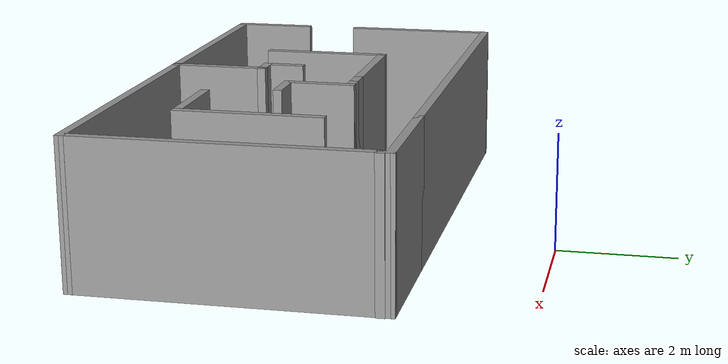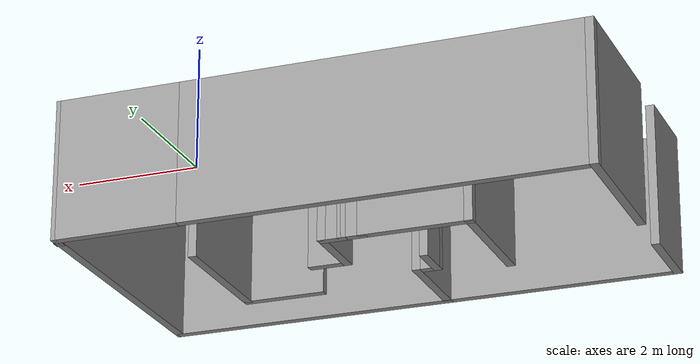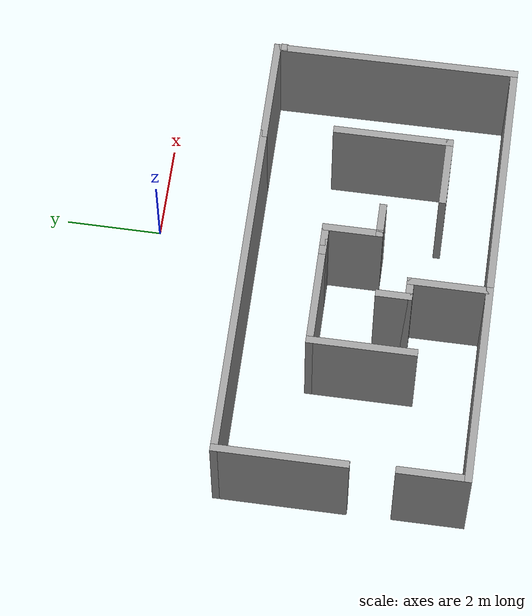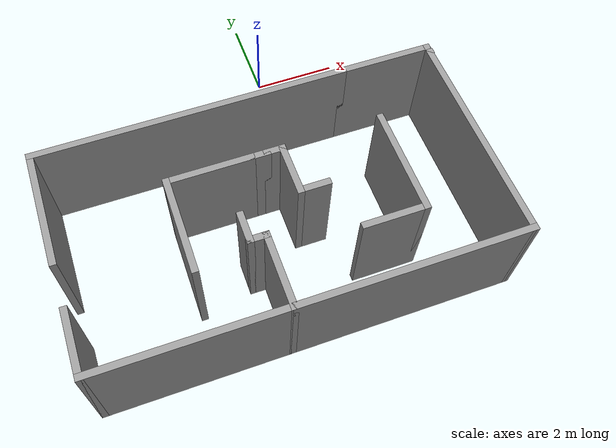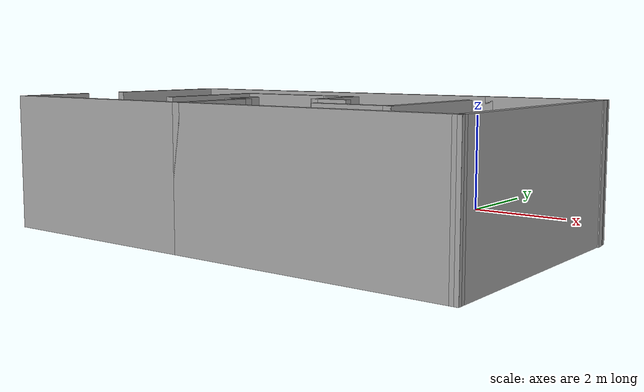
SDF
<?xml version='1.0'?>
<sdf version='1.7'>
  <model name='map'>
    <pose>-1.14985 -3.56765 0 0 -0 0</pose>
    <link name='Wall_0'>
      <collision name='Wall_0_Collision'>
        <geometry>
          <box>
            <size>2.75 0.15 2.5</size>
          </box>
        </geometry>
        <pose>0 0 1.25 0 -0 0</pose>
      </collision>
      <visual name='Wall_0_Visual'>
        <pose>0 0 1.25 0 -0 0</pose>
        <geometry>
          <box>
            <size>2.75 0.15 2.5</size>
          </box>
        </geometry>
        <material>
          <script>
            <uri>file://media/materials/scripts/gazebo.material</uri>
            <name>Gazebo/Grey</name>
          </script>
          <ambient>1 1 1 1</ambient>
        </material>
        <meta>
          <layer>0</layer>
        </meta>
      </visual>
      <pose>-4.61015 0.20765 0 0 -0 -1.5708</pose>
    </link>
    <link name='Wall_10'>
      <collision name='Wall_10_Collision'>
        <geometry>
          <box>
            <size>4.25 0.15 2.5</size>
          </box>
        </geometry>
        <pose>0 0 1.25 0 -0 0</pose>
      </collision>
      <visual name='Wall_10_Visual'>
        <pose>0 0 1.25 0 -0 0</pose>
        <geometry>
          <box>
            <size>4.25 0.15 2.5</size>
          </box>
        </geometry>
        <material>
          <script>
            <uri>file://media/materials/scripts/gazebo.material</uri>
            <name>Gazebo/Grey</name>
          </script>
          <ambient>1 1 1 1</ambient>
        </material>
        <meta>
          <layer>0</layer>
        </meta>
      </visual>
      <pose>-2.54015 -3.49235 0 0 -0 0</pose>
    </link>
    <link name='Wall_11'>
      <collision name='Wall_11_Collision'>
        <geometry>
          <box>
            <size>1.75 0.15 2.5</size>
          </box>
        </geometry>
        <pose>0 0 1.25 0 -0 0</pose>
      </collision>
      <visual name='Wall_11_Visual'>
        <pose>0 0 1.25 0 -0 0</pose>
        <geometry>
          <box>
            <size>1.75 0.15 2.5</size>
          </box>
        </geometry>
        <material>
          <script>
            <uri>file://media/materials/scripts/gazebo.material</uri>
            <name>Gazebo/Grey</name>
          </script>
          <ambient>1 1 1 1</ambient>
        </material>
        <meta>
          <layer>0</layer>
        </meta>
      </visual>
      <pose>-0.490149 -2.69235 0 0 -0 1.5708</pose>
    </link>
    <link name='Wall_12'>
      <collision name='Wall_12_Collision'>
        <geometry>
          <box>
            <size>0.5 0.15 2.5</size>
          </box>
        </geometry>
        <pose>0 0 1.25 0 -0 0</pose>
      </collision>
      <visual name='Wall_12_Visual'>
        <pose>0 0 1.25 0 -0 0</pose>
        <geometry>
          <box>
            <size>0.5 0.15 2.5</size>
          </box>
        </geometry>
        <material>
          <script>
            <uri>file://media/materials/scripts/gazebo.material</uri>
            <name>Gazebo/Grey</name>
          </script>
          <ambient>1 1 1 1</ambient>
        </material>
        <meta>
          <layer>0</layer>
        </meta>
      </visual>
      <pose>-0.665149 -1.89235 0 0 -0 3.14159</pose>
    </link>
    <link name='Wall_13'>
      <collision name='Wall_13_Collision'>
        <geometry>
          <box>
            <size>0.75 0.15 2.5</size>
          </box>
        </geometry>
        <pose>0 0 1.25 0 -0 0</pose>
      </collision>
      <visual name='Wall_13_Visual'>
        <pose>0 0 1.25 0 -0 0</pose>
        <geometry>
          <box>
            <size>0.75 0.15 2.5</size>
          </box>
        </geometry>
        <material>
          <script>
            <uri>file://media/materials/scripts/gazebo.material</uri>
            <name>Gazebo/Grey</name>
          </script>
          <ambient>1 1 1 1</ambient>
        </material>
        <meta>
          <layer>0</layer>
        </meta>
      </visual>
      <pose>-0.840149 -1.59235 0 0 -0 1.5708</pose>
    </link>
    <link name='Wall_15'>
      <collision name='Wall_15_Collision'>
        <geometry>
          <box>
            <size>0.5 0.15 2.5</size>
          </box>
        </geometry>
        <pose>0 0 1.25 0 -0 0</pose>
      </collision>
      <visual name='Wall_15_Visual'>
        <pose>0 0 1.25 0 -0 0</pose>
        <geometry>
          <box>
            <size>0.5 0.15 2.5</size>
          </box>
        </geometry>
        <material>
          <script>
            <uri>file://media/materials/scripts/gazebo.material</uri>
            <name>Gazebo/Grey</name>
          </script>
          <ambient>1 1 1 1</ambient>
        </material>
        <meta>
          <layer>0</layer>
        </meta>
      </visual>
      <pose>-0.025149 -0.04235 0 0 -0 0</pose>
    </link>
    <link name='Wall_16'>
      <collision name='Wall_16_Collision'>
        <geometry>
          <box>
            <size>0.5 0.15 2.5</size>
          </box>
        </geometry>
        <pose>0 0 1.25 0 -0 0</pose>
      </collision>
      <visual name='Wall_16_Visual'>
        <pose>0 0 1.25 0 -0 0</pose>
        <geometry>
          <box>
            <size>0.5 0.15 2.5</size>
          </box>
        </geometry>
        <material>
          <script>
            <uri>file://media/materials/scripts/gazebo.material</uri>
            <name>Gazebo/Grey</name>
          </script>
          <ambient>1 1 1 1</ambient>
        </material>
        <meta>
          <layer>0</layer>
        </meta>
      </visual>
      <pose>0.324851 -0.04235 0 0 -0 0</pose>
    </link>
    <link name='Wall_17'>
      <collision name='Wall_17_Collision'>
        <geometry>
          <box>
            <size>1.25 0.15 2.5</size>
          </box>
        </geometry>
        <pose>0 0 1.25 0 -0 0</pose>
      </collision>
      <visual name='Wall_17_Visual'>
        <pose>0 0 1.25 0 -0 0</pose>
        <geometry>
          <box>
            <size>1.25 0.15 2.5</size>
          </box>
        </geometry>
        <material>
          <script>
            <uri>file://media/materials/scripts/gazebo.material</uri>
            <name>Gazebo/Grey</name>
          </script>
          <ambient>1 1 1 1</ambient>
        </material>
        <meta>
          <layer>0</layer>
        </meta>
      </visual>
      <pose>0.499851 -0.59235 0 0 -0 -1.5708</pose>
    </link>
    <link name='Wall_18'>
      <collision name='Wall_18_Collision'>
        <geometry>
          <box>
            <size>0.75 0.15 2.5</size>
          </box>
        </geometry>
        <pose>0 0 1.25 0 -0 0</pose>
      </collision>
      <visual name='Wall_18_Visual'>
        <pose>0 0 1.25 0 -0 0</pose>
        <geometry>
          <box>
            <size>0.75 0.15 2.5</size>
          </box>
        </geometry>
        <material>
          <script>
            <uri>file://media/materials/scripts/gazebo.material</uri>
            <name>Gazebo/Grey</name>
          </script>
          <ambient>1 1 1 1</ambient>
        </material>
        <meta>
          <layer>0</layer>
        </meta>
      </visual>
      <pose>0.799851 -1.14235 0 0 -0 0</pose>
    </link>
    <link name='Wall_2'>
      <collision name='Wall_2_Collision'>
        <geometry>
          <box>
            <size>7.25 0.15 2.5</size>
          </box>
        </geometry>
        <pose>0 0 1.25 0 -0 0</pose>
      </collision>
      <visual name='Wall_2_Visual'>
        <pose>0 0 1.25 0 -0 0</pose>
        <geometry>
          <box>
            <size>7.25 0.15 2.5</size>
          </box>
        </geometry>
        <material>
          <script>
            <uri>file://media/materials/scripts/gazebo.material</uri>
            <name>Gazebo/Grey</name>
          </script>
          <ambient>1 1 1 1</ambient>
        </material>
        <meta>
          <layer>0</layer>
        </meta>
      </visual>
      <pose>-1.06015 1.50765 0 0 -0 0</pose>
    </link>
    <link name='Wall_21'>
      <collision name='Wall_21_Collision'>
        <geometry>
          <box>
            <size>1.5 0.15 2.5</size>
          </box>
        </geometry>
        <pose>0 0 1.25 0 -0 0</pose>
      </collision>
      <visual name='Wall_21_Visual'>
        <pose>0 0 1.25 0 -0 0</pose>
        <geometry>
          <box>
            <size>1.5 0.15 2.5</size>
          </box>
        </geometry>
        <material>
          <script>
            <uri>file://media/materials/scripts/gazebo.material</uri>
            <name>Gazebo/Grey</name>
          </script>
          <ambient>1 1 1 1</ambient>
        </material>
        <meta>
          <layer>0</layer>
        </meta>
      </visual>
      <pose>2.11485 -2.33235 0 0 -0 0</pose>
    </link>
    <link name='Wall_22'>
      <collision name='Wall_22_Collision'>
        <geometry>
          <box>
            <size>2.5 0.15 2.5</size>
          </box>
        </geometry>
        <pose>0 0 1.25 0 -0 0</pose>
      </collision>
      <visual name='Wall_22_Visual'>
        <pose>0 0 1.25 0 -0 0</pose>
        <geometry>
          <box>
            <size>2.5 0.15 2.5</size>
          </box>
        </geometry>
        <material>
          <script>
            <uri>file://media/materials/scripts/gazebo.material</uri>
            <name>Gazebo/Grey</name>
          </script>
          <ambient>1 1 1 1</ambient>
        </material>
        <meta>
          <layer>0</layer>
        </meta>
      </visual>
      <pose>2.78985 -1.15735 0 0 -0 1.5708</pose>
    </link>
    <link name='Wall_24'>
      <collision name='Wall_24_Collision'>
        <geometry>
          <box>
            <size>5.25 0.15 2.5</size>
          </box>
        </geometry>
        <pose>0 0 1.25 0 -0 0</pose>
      </collision>
      <visual name='Wall_24_Visual'>
        <pose>0 0 1.25 0 -0 0</pose>
        <geometry>
          <box>
            <size>5.25 0.15 2.5</size>
          </box>
        </geometry>
        <material>
          <script>
            <uri>file://media/materials/scripts/gazebo.material</uri>
            <name>Gazebo/Grey</name>
          </script>
          <ambient>1 1 1 1</ambient>
        </material>
        <meta>
          <layer>0</layer>
        </meta>
      </visual>
      <pose>2.05985 -3.49235 0 0 -0 0</pose>
    </link>
    <link name='Wall_26'>
      <collision name='Wall_26_Collision'>
        <geometry>
          <box>
            <size>0.15 0.15 2.5</size>
          </box>
        </geometry>
        <pose>0 0 1.25 0 -0 0</pose>
      </collision>
      <visual name='Wall_26_Visual'>
        <pose>0 0 1.25 0 -0 0</pose>
        <geometry>
          <box>
            <size>0.15 0.15 2.5</size>
          </box>
        </geometry>
        <material>
          <script>
            <uri>file://media/materials/scripts/gazebo.material</uri>
            <name>Gazebo/Grey</name>
          </script>
          <ambient>1 1 1 1</ambient>
        </material>
        <meta>
          <layer>0</layer>
        </meta>
      </visual>
      <pose>4.60985 1.35765 0 0 -0 0</pose>
    </link>
    <link name='Wall_27'>
      <collision name='Wall_27_Collision'>
        <geometry>
          <box>
            <size>0.15 0.15 2.5</size>
          </box>
        </geometry>
        <pose>0 0 1.25 0 -0 0</pose>
      </collision>
      <visual name='Wall_27_Visual'>
        <pose>0 0 1.25 0 -0 0</pose>
        <geometry>
          <box>
            <size>0.15 0.15 2.5</size>
          </box>
        </geometry>
        <material>
          <script>
            <uri>file://media/materials/scripts/gazebo.material</uri>
            <name>Gazebo/Grey</name>
          </script>
          <ambient>1 1 1 1</ambient>
        </material>
        <meta>
          <layer>0</layer>
        </meta>
      </visual>
      <pose>4.60985 1.35765 0 0 -0 0</pose>
    </link>
    <link name='Wall_30'>
      <collision name='Wall_30_Collision'>
        <geometry>
          <box>
            <size>2.25 0.15 2.5</size>
          </box>
        </geometry>
        <pose>0 0 1.25 0 -0 0</pose>
      </collision>
      <visual name='Wall_30_Visual'>
        <pose>0 0 1.25 0 -0 0</pose>
        <geometry>
          <box>
            <size>2.25 0.15 2.5</size>
          </box>
        </geometry>
        <material>
          <script>
            <uri>file://media/materials/scripts/gazebo.material</uri>
            <name>Gazebo/Grey</name>
          </script>
          <ambient>1 1 1 1</ambient>
        </material>
        <meta>
          <layer>0</layer>
        </meta>
      </visual>
      <pose>3.53985 1.50765 0 0 -0 0</pose>
    </link>
    <link name='Wall_31'>
      <collision name='Wall_31_Collision'>
        <geometry>
          <box>
            <size>5.15004 0.15 2.5</size>
          </box>
        </geometry>
        <pose>0 0 1.25 0 -0 0</pose>
      </collision>
      <visual name='Wall_31_Visual'>
        <pose>0 0 1.25 0 -0 0</pose>
        <geometry>
          <box>
            <size>5.15004 0.15 2.5</size>
          </box>
        </geometry>
        <material>
          <script>
            <uri>file://media/materials/scripts/gazebo.material</uri>
            <name>Gazebo/Grey</name>
          </script>
          <ambient>1 1 1 1</ambient>
        </material>
        <meta>
          <layer>0</layer>
        </meta>
      </visual>
      <pose>4.59985 -0.99235 0 0 -0 -1.5668</pose>
    </link>
    <link name='Wall_4'>
      <collision name='Wall_4_Collision'>
        <geometry>
          <box>
            <size>2.25 0.15 2.5</size>
          </box>
        </geometry>
        <pose>0 0 1.25 0 -0 0</pose>
      </collision>
      <visual name='Wall_4_Visual'>
        <pose>0 0 1.25 0 -0 0</pose>
        <geometry>
          <box>
            <size>2.25 0.15 2.5</size>
          </box>
        </geometry>
        <material>
          <script>
            <uri>file://media/materials/scripts/gazebo.material</uri>
            <name>Gazebo/Grey</name>
          </script>
          <ambient>1 1 1 1</ambient>
        </material>
        <meta>
          <layer>0</layer>
        </meta>
      </visual>
      <pose>-2.05015 -1.09235 0 0 -0 -1.5708</pose>
    </link>
    <link name='Wall_6'>
      <collision name='Wall_6_Collision'>
        <geometry>
          <box>
            <size>2 0.15 2.5</size>
          </box>
        </geometry>
        <pose>0 0 1.25 0 -0 0</pose>
      </collision>
      <visual name='Wall_6_Visual'>
        <pose>0 0 1.25 0 -0 0</pose>
        <geometry>
          <box>
            <size>2 0.15 2.5</size>
          </box>
        </geometry>
        <material>
          <script>
            <uri>file://media/materials/scripts/gazebo.material</uri>
            <name>Gazebo/Grey</name>
          </script>
          <ambient>1 1 1 1</ambient>
        </material>
        <meta>
          <layer>0</layer>
        </meta>
      </visual>
      <pose>-1.12515 -0.04235 0 0 -0 0</pose>
    </link>
    <link name='Wall_9'>
      <collision name='Wall_9_Collision'>
        <geometry>
          <box>
            <size>1.5 0.15 2.5</size>
          </box>
        </geometry>
        <pose>0 0 1.25 0 -0 0</pose>
      </collision>
      <visual name='Wall_9_Visual'>
        <pose>0 0 1.25 0 -0 0</pose>
        <geometry>
          <box>
            <size>1.5 0.15 2.5</size>
          </box>
        </geometry>
        <material>
          <script>
            <uri>file://media/materials/scripts/gazebo.material</uri>
            <name>Gazebo/Grey</name>
          </script>
          <ambient>1 1 1 1</ambient>
        </material>
        <meta>
          <layer>0</layer>
        </meta>
      </visual>
      <pose>-4.59015 -2.81735 0 0 -0 -1.5708</pose>
    </link>
    <static>1</static>
  </model>
</sdf>
